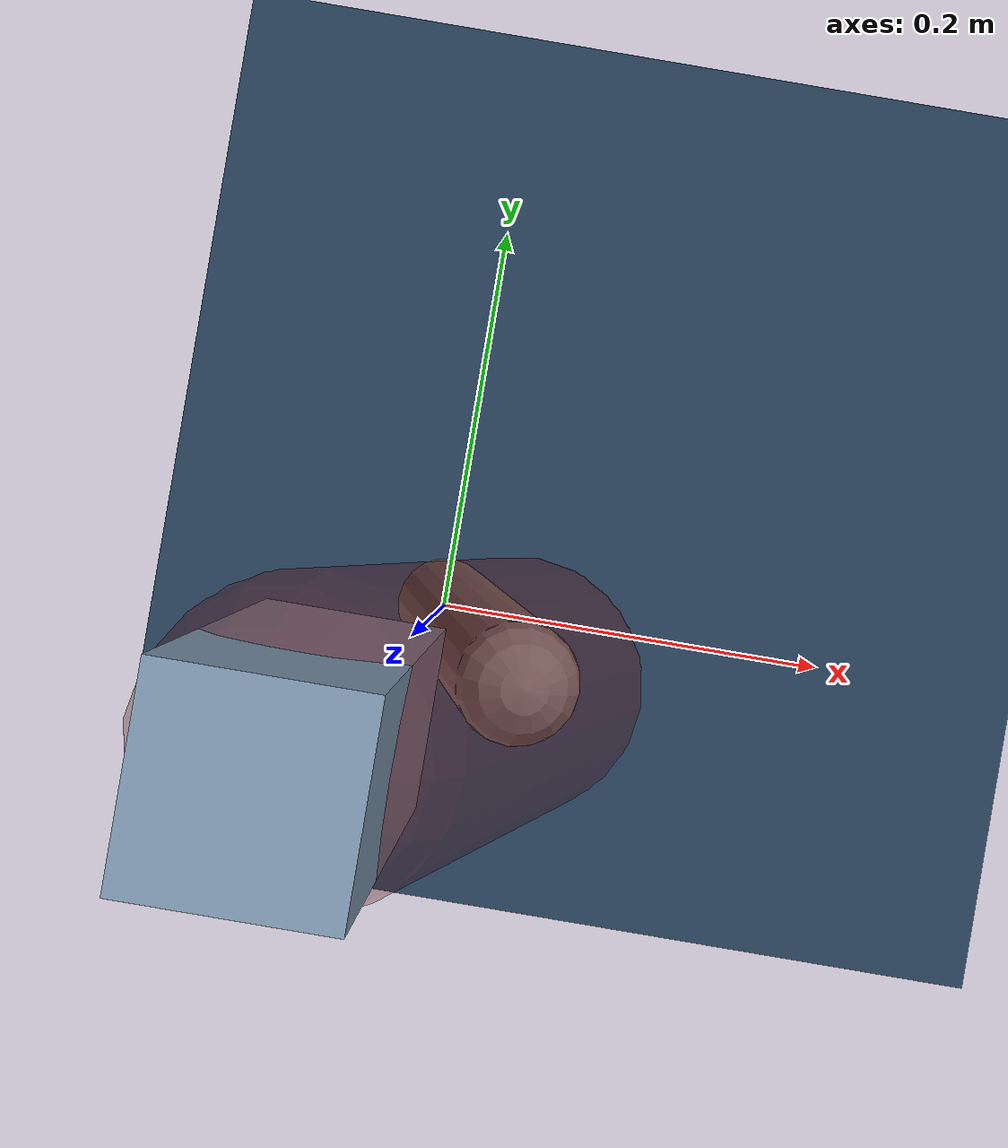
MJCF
<mujoco model="Hopper2D">
	<compiler inertiafromgeom="true" angle="radian" />
	<option timestep="0.001" integrator="implicit" cone="elliptic" solver="Newton" tolerance="1e-10" />

	<default>
		<geom contype="1" conaffinity="1" condim="3" friction="2 0.005 0.0001" solref="0.005 1" />
		<joint limited="true" damping="0.1" />
	</default>

	<asset>
		<texture name="skybox" type="skybox" builtin="gradient" rgb1=".4 .6 .8" rgb2="0 0 0" width="800" height="800" />
		<texture name="grid" type="2d" builtin="checker" rgb1=".1 .2 .3" rgb2=".2 .3 .4" width="300" height="300" mark="edge" markrgb=".2 .3 .4" />
		<material name="ground" texture="grid" texrepeat="1 1" texuniform="true" reflectance="0.1" />
		<material name="leg" rgba="0.5 0.6 0.7 1" />
	</asset>

	<worldbody>

		<geom name="floor" type="plane" size="5 5 0.25" material="ground" />

		<light directional="false" diffuse="0.8 0.8 0.8" specular="0.3 0.3 0.3" pos="0 0 2" dir="0 0 -1" />
		<light mode="targetbodycom" target="base" directional="false" diffuse="0.8 0.8 0.8" specular="0.3 0.3 0.3" pos="0 0 2" dir="0 0 -1" />

		<camera name="fixed" pos="0 -2 1" xyaxes="1 0 0 0 0 1" />
		<camera name="tracking" mode="trackcom" pos="0 -3 1" />

		<body name="root" pos="0 0 0.5619528823405314">
			<joint name="slide_x" type="slide" axis="1 0 0" range="-100 100" />
			<joint name="slide_z" type="slide" axis="0 0 1" range="0 10" />

			<body name="base" pos="0 0 0">
				<geom name="torso" type="box" size="0.03 0.03 0.1" mass="3.41" material="leg" />

				<body name="link1" pos="0 0 0" euler="0 1.3593825310517276 0">
					<joint type="hinge" axis="0 -1 0" pos="0 0 0" name="hinge1" limited="true" range="-3.14 3.14" stiffness="0" damping="0.1" />
					<geom name="thigh" type="capsule" fromto="0 0 0 0.2518474420457465 0 0" size="0.05" rgba="0.5 0 0 0.3" mass="0.8612033493189409" />

					<body name="link2" pos="0.2518474420457465 0 0" euler="0 0.37726961928087116 0">
						<joint type="hinge" axis="0 -1 0" pos="0 0 0" name="hinge2" limited="true" range="-3.14 3.14" stiffness="0" damping="0.1" />
						<geom name="shank" type="capsule" fromto="0 0 0 0.32010544029478494 0 0" size="0.025" mass="0.4997843522358279" />

					</body>
				</body>
			</body>
		</body>
	</worldbody>

	<actuator>
		<motor name="torque1" joint="hinge1" ctrlrange="-55.14533064923473 55.14533064923473" ctrllimited="true" gear="1" />
		<motor name="torque2" joint="hinge2" ctrlrange="-230.14548608281834 230.14548608281834" ctrllimited="true" gear="1" />
	</actuator>
</mujoco>
